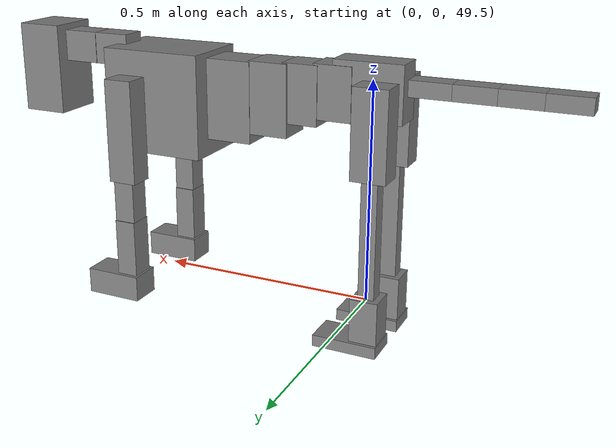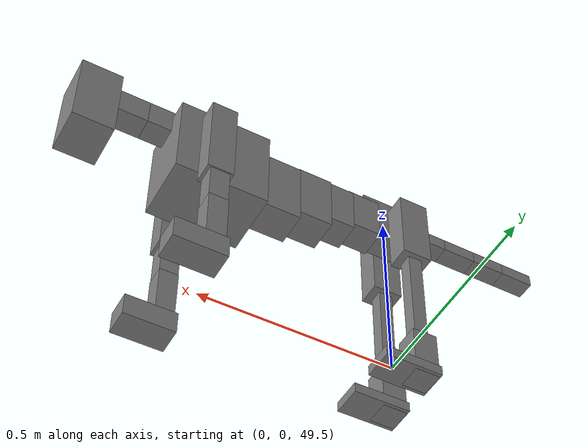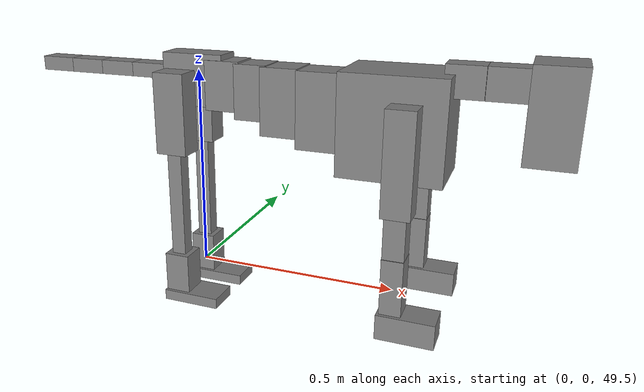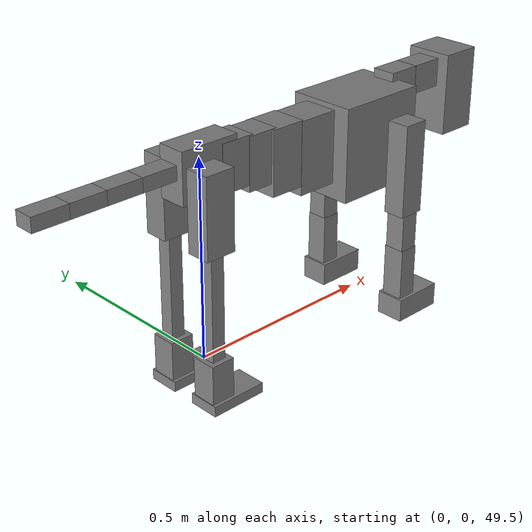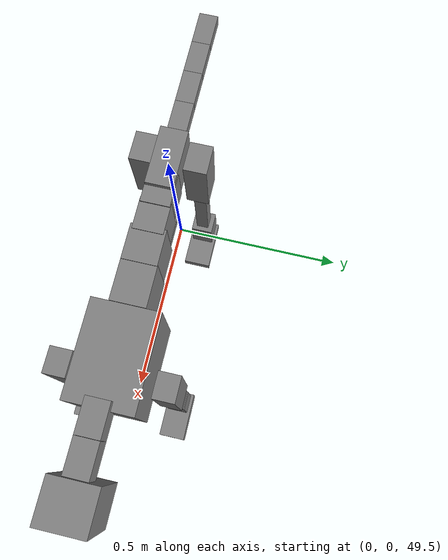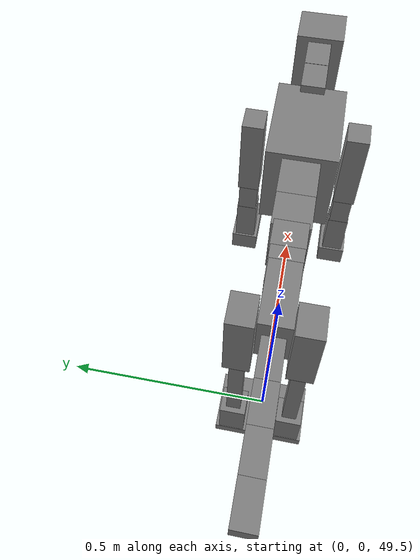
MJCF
<mujoco model="dog">

    <default>
        <joint armature="0.02" stiffness="1" damping="0.2" limited="true"/>
        <geom condim="3" friction="1 0.05 0.05" margin="0.01"/>
        <motor ctrllimited="true" ctrlrange="-1.0 1.0" forcelimited="true" gear="50"/>
    </default>

    <compiler inertiafromgeom="true" angle="radian"/>

    <option timestep="0.016" iterations="50" tolerance="1e-10" solver="Newton" jacobian="dense" cone="pyramidal"/>

    <size nconmax="20000" njmax="60000" nstack="5000000"/>
    <visual>
        <map force="0.1" zfar="30"/>
        <rgba haze="0.15 0.25 0.35 1"/>
        <quality shadowsize="2048"/>
        <global offwidth="800" offheight="800"/>
    </visual>

    <asset>
        <texture type="skybox" builtin="gradient" rgb1="0.3 0.5 0.7" rgb2="0 0 0" width="512" height="512"/>
        <texture name="texplane" type="2d" builtin="checker" rgb1=".2 .3 .4" rgb2=".1 0.15 0.2" width="512" height="512"
                 mark="cross" markrgb=".8 .8 .8"/>
        <texture name="texgeom" type="cube" builtin="flat" mark="cross" width="127" height="1278" rgb1="0.8 0.6 0.4"
                 rgb2="0.8 0.6 0.4" markrgb="1 1 1" random="0.01"/>

        <material name="matplane" reflectance="0.3" texture="texplane" texrepeat="1 1" texuniform="true"/>
        <material name="matgeom" texture="texgeom" texuniform="true" rgba="0.8 0.6 .4 1"/>
    </asset>

    <worldbody>
        <geom name="floor" pos="0 0 0" size="0 0 .25" type="plane" material="matplane" condim="3"/>

        <light directional="false" diffuse=".2 .2 .2" specular="0 0 0" pos="0 0 5" dir="0 0 -1" castshadow="false"/>
        <light mode="targetbodycom" target="torso" directional="false" diffuse=".8 .8 .8" specular="0.3 0.3 0.3"
               pos="0 0 4.0" dir="0 0 -1"/>

        <body name="root" pos="0 0 50">
            <freejoint name="root_1"/>
            <geom type="box" pos="0 0 -0.02" size="0.0774  0.0358  0.063" density="2030"/>

            <body name="spine1" pos="0.054 0 0">
                <joint name="spine1_y" axis="0 1 0" range="0 0.7" limited="true"/>
                <geom type="box" pos="0.02375 0 -0.03" size="0.04375  0.0375  0.05985" density="2030"/>

                <body name="spine2" pos="0.0612 0 0">
                    <joint name="spine2_y" axis="0 1 0" range="-0.15 0.15" limited="true"/>
                    <geom type="box" pos="0.03555  0  -0.04" size="0.04055  0.039  0.06615" density="2030"/>

                    <body name="spine3" pos="0.0730 0 0">
                        <joint name="spine3_y" axis="0 1 0" range="-0.15 0.15" limited="true"/>
                        <geom type="box" pos="0.03555  0  -0.057" size="0.04555  0.0445  0.081" density="2030"/>

                        <body name="spine4" pos="0.0780 0 0">
                            <joint name="spine4_y" axis="0 1 0" range="-0.15 0.15" limited="true"/>
                            <geom type="box" pos="0.05265  0  -0.07" size="0.05265  0.045  0.09135" density="2030"/>

                            <body name="torso" pos="0.1082 0 0">
                                <joint name="torso_y" axis="0 1 0" range="-0.15 0.15" limited="true"/>
                                <geom type="box" pos="0.11925  0  -0.085" size="0.11925  0.085  0.11745"
                                      density="2030"/>

                                <body name="neck1" pos="0.2160  0   0.0180">
                                    <joint name="neck1_y" axis="0 1 0" range="-1.2  -1" limited="true"/>
                                    <geom type="box" pos="0.0423  0  0" size="0.0423  0.03  0.036" density="2325"/>

                                    <body name="neck2" pos="0.0853  0  0">
                                        <joint name="neck2_y" axis="0 1 0" range="0.1  0" limited="true"/>
                                        <geom type="box" pos="0.0423  0  0" size="0.0423  0.03  0.036" density="2325"/>

                                        <body name="head" pos="0.0853  0  0">
                                            <joint name="head_y" axis="0 1 0" range="-0.3  -0.2" limited="true"/>
                                            <geom type="box" pos="0.0531  0  -0.055" size="0.0531  0.06  0.1044"
                                                  density="4030"/>

                                        </body>
                                    </body>
                                </body>

                                <body name="front_shoulder" pos="0.156  0   -0.0480">
                                    <joint name="front_shoulder_y" axis="0 1 0" range="-1 1.5" limited="true"/>
                                    <geom type="box" pos="0 0.13 -0.0906" size="0.0328  0.0280  0.1172" density="1158"/>
                                    <geom type="box" pos="0 -0.13 -0.0906" size="0.0328  0.0280  0.1172"
                                          density="1158"/>

                                    <body name="front_elbow" pos="0  0  -0.1812">
                                        <joint name="front_elbow_y" axis="0 1 0" range="-2 0" limited="true"/>
                                        <geom type="box" pos="0 0.13 -0.0665" size="0.0242  0.0248  0.0665"
                                              density="1081"/>
                                        <geom type="box" pos="0 -0.13 -0.0665" size="0.0242  0.0248  0.0665"
                                              density="1081"/>

                                        <body name="front_wrist" pos="0  0  -0.1329">
                                            <joint name="front_wrist_y" axis="0 1 0" range="-0.2 0" limited="true"/>
                                            <geom type="box" pos="0 0.13 -0.0659" size="0.0245  0.0272  0.0791"
                                                  density="1664"/>
                                            <geom type="box" pos="0 -0.13 -0.0659" size="0.0245  0.0272  0.0791"
                                                  density="1664"/>

                                            <body name="front_finger_end" pos="0  0  -0.1318">
                                                <joint name="front_finger_y" axis="0 1 0" range="-0.4 1"
                                                       limited="true"/>
                                                <geom type="box" pos="0.0358  0.13  -0.0143"
                                                      size="0.0656  0.0358  0.0293" density="1515"/>
                                                <geom type="box" pos="0.0358  -0.13  -0.0143"
                                                      size="0.0656  0.0358  0.0293" density="1515"/>

                                            </body>

                                        </body>
                                    </body>
                                </body>

                            </body>
                        </body>
                    </body>
                </body>
            </body>

            <body name="back_hip" pos="-0.03 0 -0.018">
                <joint name="back_hip_y" axis="0 1 0" range="-1.5 0.3" limited="true"/>
                <geom type="box" pos="0 0.07 -0.0759" size="0.0390  0.0306  0.0987" density="1154"/>
                <geom type="box" pos="0 -0.07 -0.0759" size="0.0390  0.0306  0.0987" density="1154"/>

                <body name="back_knee" pos="0  0  -0.1518">
                    <joint name="back_knee_y" axis="0 1 0" range="0 2.8" limited="true"/>
                    <geom type="box" pos="0 0.07 -0.1487" size="0.0179  0.0177  0.1642" density="1227"/>
                    <geom type="box" pos="0 -0.07 -0.1487" size="0.0179  0.0177  0.1642" density="1227"/>

                    <body name="back_ankle" pos="0  0  -0.2974">
                        <joint name="back_ankle_y" axis="0 1 0" range="-2.2 0" limited="true"/>
                        <geom type="box" pos="0 0.07 -0.0513" size="0.0313  0.0313  0.0626" density="1284"/>
                        <geom type="box" pos="0 -0.07 -0.0513" size="0.0313  0.0313  0.0626" density="1284"/>

                        <body name="back_toe_end" pos="0  0  -0.1026">
                            <joint name="back_toe_y" axis="0 1 0" range="-0.4 1" limited="true"/>
                            <geom type="box" pos="0.0397  0.07  0.0020" size="0.0728  0.0397  0.0130" density="1515"/>
                            <geom type="box" pos="0.0397  -0.07  0.0020" size="0.0728  0.0397  0.0130" density="1515"/>

                        </body>
                    </body>
                </body>
            </body>

            <body name="tail1" pos="-0.074 0 -0.006">
                <joint name="tail1_y" axis="0 1 0" range="-0.2 0.2" limited="true"/>
                <geom type="box" pos="-0.0536  0  0" size="0.045  0.025  0.0175" density="1587"/>

                <body name="tail2" pos="-0.09 0 0">
                    <joint name="tail2_y" axis="0 1 0" range="-0.2 0.2" limited="true"/>
                    <geom type="box" pos="-0.0536  0  0" size="0.045  0.025  0.0175" density="1587"/>

                    <body name="tail3" pos="-0.09 0 0">
                        <joint name="tail3_y" axis="0 1 0" range="-0.2 0.2" limited="true"/>
                        <geom type="box" pos="-0.0536  0  0" size="0.045  0.025  0.0175" density="1587"/>

                        <body name="tail4" pos="-0.09 0 0">
                            <joint name="tail4_y" axis="0 1 0" range="-0.2 0.2" limited="true"/>
                            <geom type="box" pos="-0.0536  0  0" size="0.045  0.025  0.0175" density="1587"/>

                        </body>
                    </body>
                </body>
            </body>
        </body>
    </worldbody>

    <actuator>
        <motor joint="spine1_y" forcerange="-150 150     "/>
        <motor joint="spine2_y" forcerange="-150 150     "/>
        <motor joint="spine3_y" forcerange="-150 150     "/>
        <motor joint="spine4_y" forcerange="-150 150     "/>
        <motor joint="torso_y" forcerange="-150 150     "/>
        <motor joint="neck1_y" forcerange="-100 100       "/>
        <motor joint="neck2_y" forcerange="-100 100       "/>
        <motor joint="head_y" forcerange="-150 150       "/>
        <motor joint="front_shoulder_y" forcerange="-152.01 134.79"/>
        <motor joint="front_elbow_y" forcerange="-104.84 175.20"/>
        <motor joint="front_wrist_y" forcerange="-80.60 136.98"/>
        <motor joint="front_finger_y" forcerange="-96.62 54.30"/>
        <motor joint="back_hip_y" forcerange="-395.52 212.39"/>
        <motor joint="back_knee_y" forcerange="-227.47 229.57"/>
        <motor joint="back_angle_y" forcerange="-194.07 206.75"/>
        <motor joint="back_toe_y" forcerange="-112.60 124.99"/>
        <motor joint="tail1_y" forcerange="-50 50     "/>
        <motor joint="tail2_y" forcerange="-50 50     "/>
        <motor joint="tail3_y" forcerange="-50 50     "/>
        <motor joint="tail4_y" forcerange="-50 50     "/>
    </actuator>
</mujoco>
